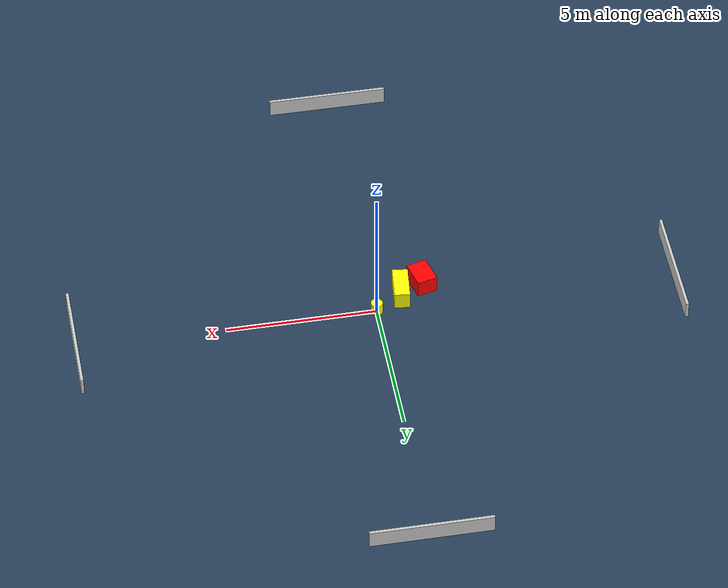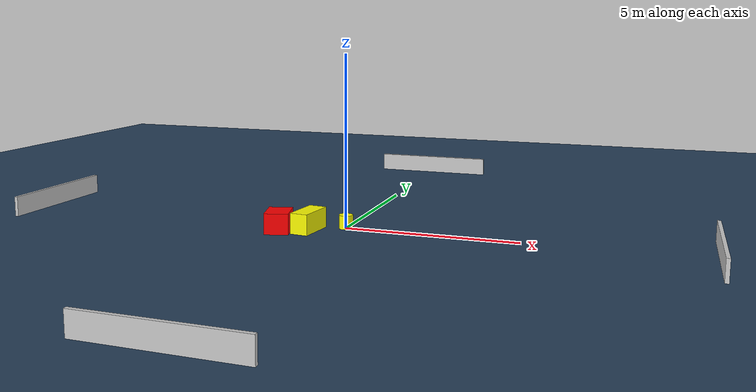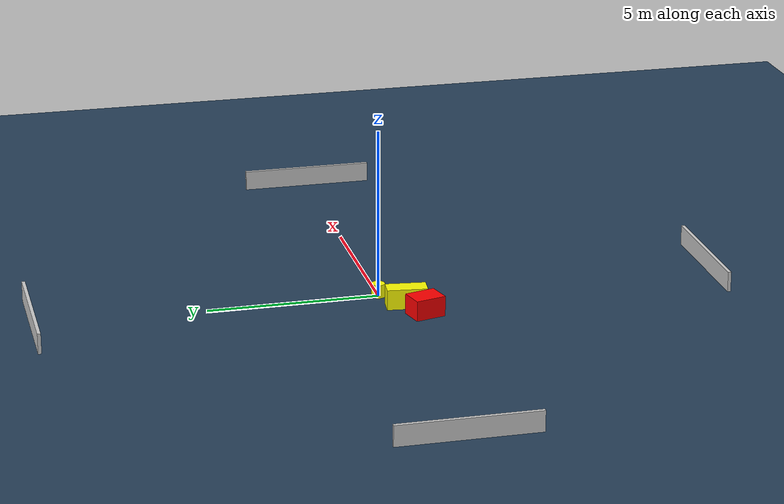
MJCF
<?xml version="1.0" ?>
<mujoco model="generated_environment">
  <option timestep="0.01" integrator="RK4" cone="elliptic"/>
  <default>
    <geom density="1"/>
  </default>
  <asset>
    <texture builtin="gradient" height="3072" name="skybox" rgb1="0.3 0.5 0.7" rgb2="0 0 0" type="skybox" width="512"/>
    <texture builtin="checker" height="300" name="groundplane" rgb1="0.2 0.3 0.4" rgb2="0.1 0.2 0.3" type="2d" width="300"/>
    <material name="groundplane" reflectance="0.2" texrepeat="5 5" texture="groundplane"/>
  </asset>
  <worldbody>
    <light dir="0 0 -1" directional="true" pos="0 0 1.5"/>
    <geom condim="3" friction="0.5 0.005 0.001" material="groundplane" name="floor" pos="0 0 0" size="0 0 0.05" type="plane"/>
    <body name="walls">
      <geom name="wall_1" condim="4" pos="-10.0 0.0 0.3" rgba="0.800000011920929 0.800000011920929 0.800000011920929 1.0" size="0.05 2.0 0.3" type="box"/>
      <geom name="wall_2" condim="4" pos="10.0 0.0 0.3" rgba="0.800000011920929 0.800000011920929 0.800000011920929 1.0" size="0.05 2.0 0.3" type="box"/>
      <geom name="wall_3" condim="4" pos="0.0 -10.0 0.3" rgba="0.800000011920929 0.800000011920929 0.800000011920929 1.0" size="2.0 0.05 0.3" type="box"/>
      <geom name="wall_4" condim="4" pos="0.0 10.0 0.3" rgba="0.800000011920929 0.800000011920929 0.800000011920929 1.0" size="2.0 0.05 0.3" type="box"/>
    </body>
    <body name="robot">
      <joint name="joint_x" type="slide" pos="0 0 0" axis="1 0 0"/>
      <joint name="joint_y" type="slide" pos="0 0 0" axis="0 1 0"/>
      <geom name="robot" type="cylinder" pos="0.0 0.0 0.2" size="0.2 0.2 0.0" mass="5.0" friction="1.0 0.005 0.0001" condim="4" rgba="1.0 1.0 0.0 1.0"/>
    </body>
    <body name="obstacle_1_movable">
      <geom name="obstacle_1_movable" condim="4" pos="-0.9177229772453609 -0.6122477746796995 0.3" euler="0 0 83.91198022213649" friction="0.0 0.005 0.001" rgba="1.0 1.0 0.0 1.0" size="0.5890461649419829 0.26248551509967816 0.3" type="box" mass="0.1"/>
      <joint type="free"/>
    </body>
    <body name="obstacle_2_static">
      <geom name="obstacle_2_static" condim="4" pos="-1.6836661502067138 -0.9754725242030123 0.3" euler="0 0 14.691706599269615" friction="0.0 0.005 0.001" rgba="1.0 0.0 0.0 1.0" size="0.3455263931281214 0.45555959185266753 0.3" type="box"/>
    </body>
  </worldbody>
  <actuator>
    <motor name="actuator_x" joint="joint_x" gear="1" ctrlrange="-1 1"/>
    <motor name="actuator_y" joint="joint_y" gear="1" ctrlrange="-1 1"/>
  </actuator>
</mujoco>
